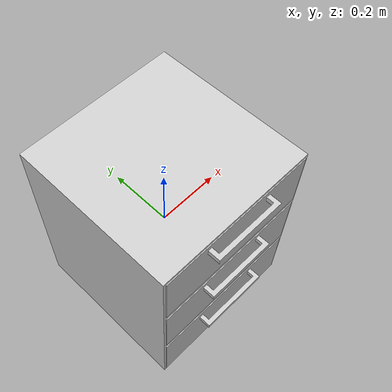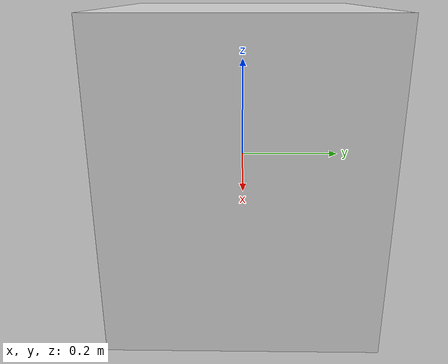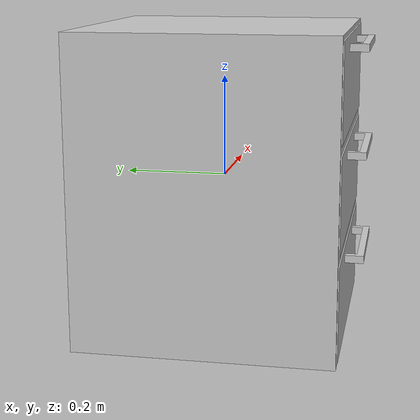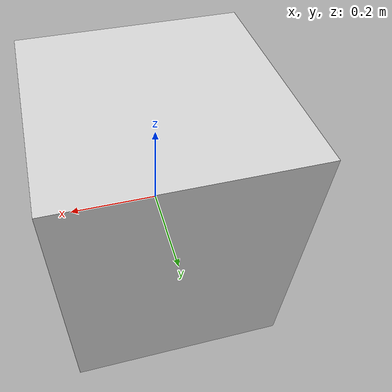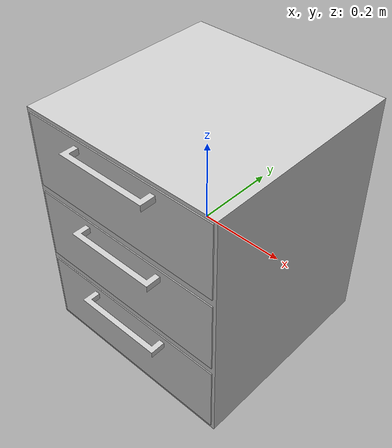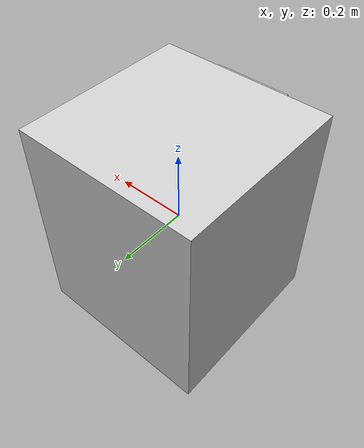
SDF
<?xml version='1.0'?>
<sdf version='1.7'>
  <model name='ChestOfDrawers'>
    <link name='chest_of_drawers'>
      <inertial>
        <mass>10.0</mass>
        <inertia>
          <ixx>0.508333333</ixx>
          <ixy>0</ixy>
          <ixz>0</ixz>
          <iyy>0.508333333</iyy>
          <iyz>0</iyz>
          <izz>0.416666667</izz>
        </inertia>
        <pose>0 0 0 0 0 0</pose>
      </inertial>
      <self_collide>0</self_collide>
      <enable_wind>0</enable_wind>
      <kinematic>0</kinematic>
      <pose>0 0 0 0 0 0</pose>
      <visual name='visual_chest_of_drawers'>
        <geometry>
          <mesh>
            <uri>model://ChestOfDrawers/meshes/ChestDrawer.dae</uri>
          </mesh>
        </geometry>
        <material>
          <name>Gazebo/DarkGrey </name>
            <uri>file://media/materials/scripts/gazebo.material</uri>
          </material>
      </visual>
      <collision name='collision_chest_of_drawers'>
        <laser_retro>0</laser_retro>
        <max_contacts>10</max_contacts>
        <pose>0 0 0 0 0 0</pose>
        <geometry>
          <mesh>
            <uri>model://ChestOfDrawers/meshes/ChestDrawer.dae</uri>
          </mesh>
        </geometry>
        <surface>
          <friction>
            <ode>
              <mu>0.85</mu>
              <mu2>0.85</mu2>
            </ode>
          </friction>
        </surface>
      </collision>
    </link>

    <link name='drawer1'>
      <inertial>
        <mass>1.0</mass>
        <inertia>
          <ixx>0.022120667</ixx>
          <ixy>0</ixy>
          <ixz>0</ixz>
          <iyy>0.022120667</iyy>
          <iyz>0</iyz>
          <izz>0.038720667</izz>
        </inertia>
        <pose>0 0 0 0 0 0</pose>
      </inertial>
      <self_collide>0</self_collide>
      <enable_wind>0</enable_wind>
      <kinematic>0</kinematic>
      <pose>0 0 -0.20 0 0 0</pose>
      <visual name='visual_drawer1'>
        <geometry>
          <mesh>
            <uri>model://ChestOfDrawers/meshes/Drawer.dae</uri>
          </mesh>
        </geometry>
        <material>
          <name>Gazebo/Grey </name>
            <uri>file://media/materials/scripts/gazebo.material</uri>
          </material>
      </visual>
      <collision name='collision_drawer1'>
        <laser_retro>0</laser_retro>
        <max_contacts>10</max_contacts>
        <pose>0 0 0 0 0 0</pose>
        <geometry>
          <mesh>
            <uri>model://ChestOfDrawers/meshes/Drawer.dae</uri>
          </mesh>
        </geometry>
        <surface>
          <friction>
            <ode>
              <mu>0.85</mu>
              <mu2>0.85</mu2>
            </ode>
          </friction>
        </surface>
      </collision>
    </link>

    <link name='drawer2'>
      <inertial>
        <mass>1.0</mass>
        <inertia>
          <ixx>0.022120667</ixx>
          <ixy>0</ixy>
          <ixz>0</ixz>
          <iyy>0.022120667</iyy>
          <iyz>0</iyz>
          <izz>0.038720667</izz>
        </inertia>
        <pose>0 0 0 0 0 0</pose>
      </inertial>
      <self_collide>0</self_collide>
      <enable_wind>0</enable_wind>
      <kinematic>0</kinematic>
      <pose>0 0 0 0 0 0</pose>
      <visual name='visual_drawer2'>
        <geometry>
          <mesh>
            <uri>model://ChestOfDrawers/meshes/Drawer.dae</uri>
          </mesh>
        </geometry>
        <material>
          <name>Gazebo/Grey </name>
            <uri>file://media/materials/scripts/gazebo.material</uri>
          </material>
      </visual>
      <collision name='collision_drawer2'>
        <laser_retro>0</laser_retro>
        <max_contacts>10</max_contacts>
        <pose>0 0 0 0 0 0</pose>
        <geometry>
          <mesh>
            <uri>model://ChestOfDrawers/meshes/Drawer.dae</uri>
          </mesh>
        </geometry>
        <surface>
          <friction>
            <ode>
              <mu>0.85</mu>
              <mu2>0.85</mu2>
            </ode>
          </friction>
        </surface>
      </collision>
    </link>

    <link name='drawer3'>
      <inertial>
        <mass>1.0</mass>
        <inertia>
          <ixx>0.022120667</ixx>
          <ixy>0</ixy>
          <ixz>0</ixz>
          <iyy>0.022120667</iyy>
          <iyz>0</iyz>
          <izz>0.038720667</izz>
        </inertia>
        <pose>0 0 0 0 0 0</pose>
      </inertial>
      <self_collide>0</self_collide>
      <enable_wind>0</enable_wind>
      <kinematic>0</kinematic>
      <pose>0 0 0.2 0 0 0</pose>
      <visual name='visual_drawer3'>
        <geometry>
          <mesh>
            <uri>model://ChestOfDrawers/meshes/Drawer.dae</uri>
          </mesh>
        </geometry>
        <material>
          <name>Gazebo/Grey </name>
            <uri>file://media/materials/scripts/gazebo.material</uri>
          </material>
      </visual>
      <collision name='collision_drawer3'>
        <laser_retro>0</laser_retro>
        <max_contacts>10</max_contacts>
        <pose>0 0 0 0 0 0</pose>
        <geometry>
          <mesh>
            <uri>model://ChestOfDrawers/meshes/Drawer.dae</uri>
          </mesh>
        </geometry>
        <surface>
          <friction>
            <ode>
              <mu>0.85</mu>
              <mu2>0.85</mu2>
            </ode>
          </friction>
        </surface>
      </collision>
    </link>

    <joint name="jnt_1" type="prismatic">
        <parent> chest_of_drawers </parent>
        <child> drawer1 </child>
        <pose> 0.0 0.0 0.0 0.0 0.0 0.0 </pose>
        <axis>
            <xyz> 0 1 0</xyz>
            <limit>
                <lower> -0.45 </lower>
                <upper> 0.0 </upper>
            </limit>
            <dynamics>
                <friction> 0.75 </friction>
            </dynamics>
        </axis>
    </joint>

    <joint name="jnt_2" type="prismatic">
        <parent> chest_of_drawers </parent>
        <child> drawer2 </child>
        <pose> 0.0 0.0 0.0 0.0 0.0 0.0 </pose>
        <axis>
            <xyz> 0 1 0</xyz>
            <limit>
                <lower> -0.45 </lower>
                <upper> 0.0 </upper>
            </limit>
            <dynamics>
                <friction> 0.75 </friction>
            </dynamics>
        </axis>
    </joint>

    <joint name="jnt_3" type="prismatic">
        <parent> chest_of_drawers </parent>
        <child> drawer3 </child>
        <pose> 0.0 0.0 0.0 0.0 0.0 0.0 </pose>
        <axis>
            <xyz> 0 1 0</xyz>
            <limit>
                <lower> -0.45 </lower>
                <upper> 0.0 </upper>
            </limit>
            <dynamics>
                <friction> 0.75 </friction>
            </dynamics>
        </axis>
    </joint>

  </model>
</sdf>
